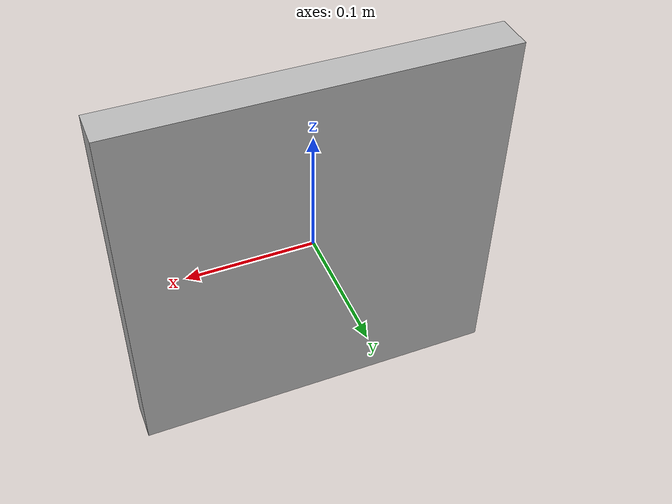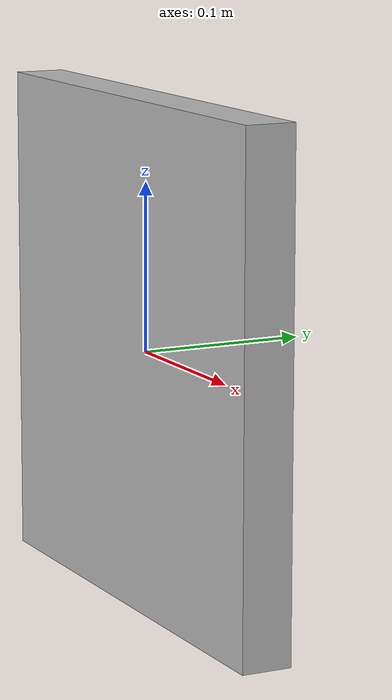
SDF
<?xml version="1.0" ?>
<sdf version="1.4">
  <model name='box'>
    <pose>0 0 0 0 0 0</pose>
    <static>1</static>
    <link name='link'>
    <gravity>0</gravity>
      <collision name='collision'>
        <geometry>
          <box>
            <size>0.3 0.03 0.3</size>
          </box>
        </geometry>
      </collision>
      <visual name='visual'>
        <geometry>
          <box>
            <size>0.3 0.03 0.3</size>
          </box>
        </geometry>
      </visual>
    </link>
  </model>
</sdf>
